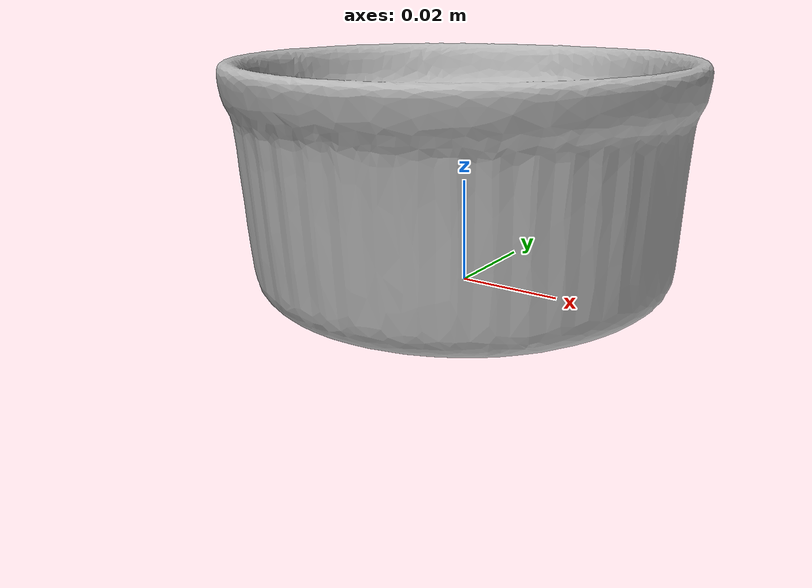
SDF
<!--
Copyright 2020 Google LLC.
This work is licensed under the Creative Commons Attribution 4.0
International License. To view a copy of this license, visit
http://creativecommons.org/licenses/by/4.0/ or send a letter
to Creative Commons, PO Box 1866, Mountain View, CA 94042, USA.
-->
<?xml version="1.0" ?>
<sdf version="1.6">
  <model name="45oz_RAMEKIN_ASST_DEEP_COLORS">
    <link name="link_0">
      <visual name="visual">
        <geometry>
          <mesh>
            <uri>meshes/model.obj</uri>
          </mesh>
        </geometry>
      </visual>
      <collision name="collision_0">
        <geometry>
          <mesh>
            <uri>meshes/model.obj</uri>
          </mesh>
        </geometry>
      </collision>
    </link>
  </model>
</sdf>
